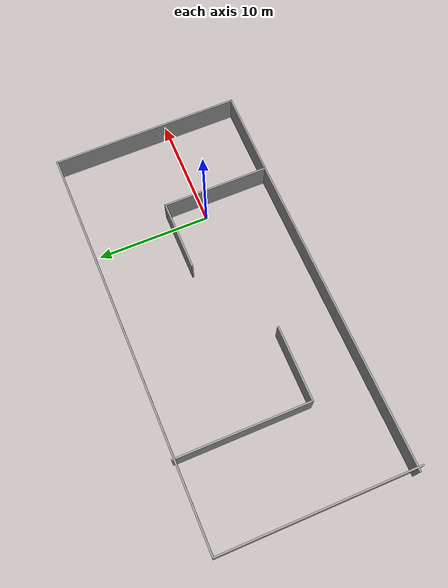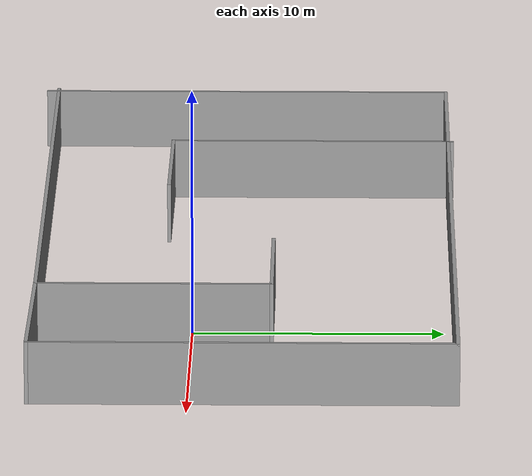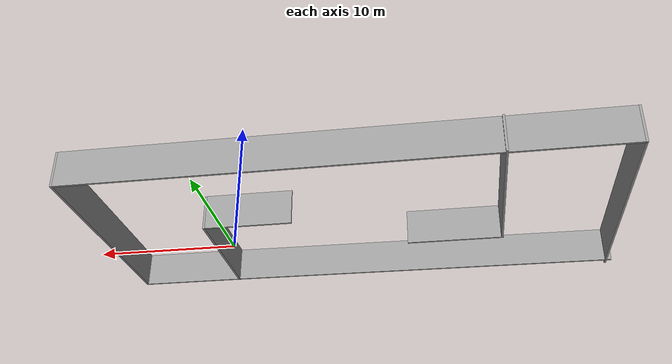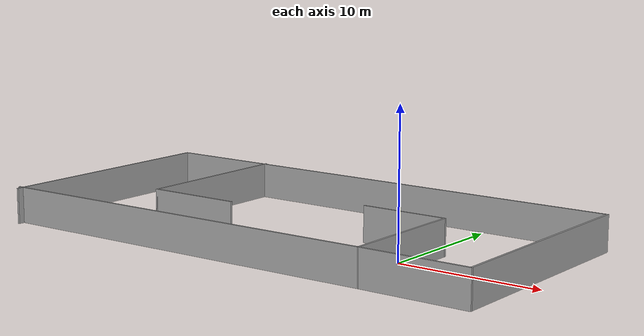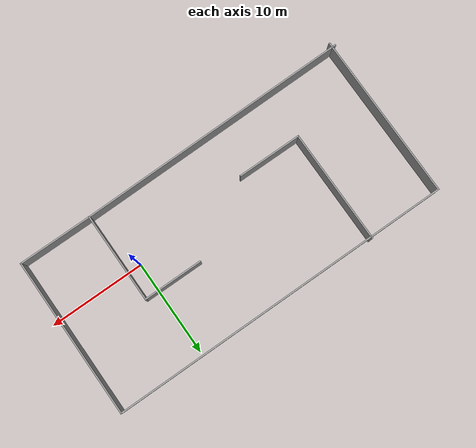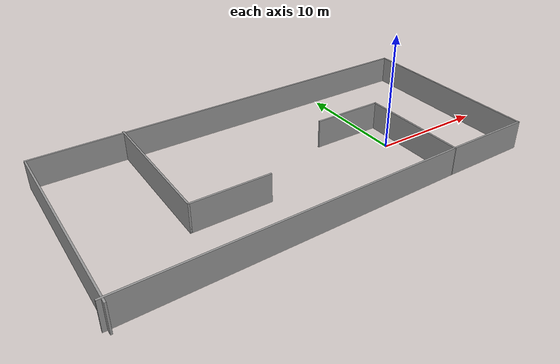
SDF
<?xml version='1.0'?>
<sdf version='1.7'>
  <model name='simple_map.world'>
    <pose>-9.16358 1.82166 0 0 -0 0</pose>
    <link name='Wall_14'>
      <collision name='Wall_14_Collision'>
        <geometry>
          <box>
            <size>17.5 0.15 2.5</size>
          </box>
        </geometry>
        <pose>0 0 1.25 0 -0 0</pose>
      </collision>
      <visual name='Wall_14_Visual'>
        <pose>0 0 1.25 0 -0 0</pose>
        <geometry>
          <box>
            <size>17.5 0.15 2.5</size>
          </box>
        </geometry>
        <material>
          <script>
            <uri>file://media/materials/scripts/gazebo.material</uri>
            <name>Gazebo/Grey</name>
          </script>
          <ambient>1 1 1 1</ambient>
        </material>
        <meta>
          <layer>0</layer>
        </meta>
      </visual>
      <pose>-17.7659 -0.079098 0 0 -0 1.5708</pose>
    </link>
    <link name='Wall_15'>
      <collision name='Wall_15_Collision'>
        <geometry>
          <box>
            <size>36 0.15 2.5</size>
          </box>
        </geometry>
        <pose>0 0 1.25 0 -0 0</pose>
      </collision>
      <visual name='Wall_15_Visual'>
        <pose>0 0 1.25 0 -0 0</pose>
        <geometry>
          <box>
            <size>36 0.15 2.5</size>
          </box>
        </geometry>
        <material>
          <script>
            <uri>file://media/materials/scripts/gazebo.material</uri>
            <name>Gazebo/Grey</name>
          </script>
          <ambient>1 1 1 1</ambient>
        </material>
        <meta>
          <layer>0</layer>
        </meta>
      </visual>
      <pose>0.159126 8.5959 0 0 -0 0</pose>
    </link>
    <link name='Wall_16'>
      <collision name='Wall_16_Collision'>
        <geometry>
          <box>
            <size>16.75 0.15 2.5</size>
          </box>
        </geometry>
        <pose>0 0 1.25 0 -0 0</pose>
      </collision>
      <visual name='Wall_16_Visual'>
        <pose>0 0 1.25 0 -0 0</pose>
        <geometry>
          <box>
            <size>16.75 0.15 2.5</size>
          </box>
        </geometry>
        <material>
          <script>
            <uri>file://media/materials/scripts/gazebo.material</uri>
            <name>Gazebo/Grey</name>
          </script>
          <ambient>1 1 1 1</ambient>
        </material>
        <meta>
          <layer>0</layer>
        </meta>
      </visual>
      <pose>18.0841 0.295902 0 0 -0 -1.5708</pose>
    </link>
    <link name='Wall_17'>
      <collision name='Wall_17_Collision'>
        <geometry>
          <box>
            <size>7.75 0.15 2.5</size>
          </box>
        </geometry>
        <pose>0 0 1.25 0 -0 0</pose>
      </collision>
      <visual name='Wall_17_Visual'>
        <pose>0 0 1.25 0 -0 0</pose>
        <geometry>
          <box>
            <size>7.75 0.15 2.5</size>
          </box>
        </geometry>
        <material>
          <script>
            <uri>file://media/materials/scripts/gazebo.material</uri>
            <name>Gazebo/Grey</name>
          </script>
          <ambient>1 1 1 1</ambient>
        </material>
        <meta>
          <layer>0</layer>
        </meta>
      </visual>
      <pose>14.2841 -8.0041 0 0 -0 3.14159</pose>
    </link>
    <link name='Wall_18'>
      <collision name='Wall_18_Collision'>
        <geometry>
          <box>
            <size>9.5 0.15 2.5</size>
          </box>
        </geometry>
        <pose>0 0 1.25 0 -0 0</pose>
      </collision>
      <visual name='Wall_18_Visual'>
        <pose>0 0 1.25 0 -0 0</pose>
        <geometry>
          <box>
            <size>9.5 0.15 2.5</size>
          </box>
        </geometry>
        <material>
          <script>
            <uri>file://media/materials/scripts/gazebo.material</uri>
            <name>Gazebo/Grey</name>
          </script>
          <ambient>1 1 1 1</ambient>
        </material>
        <meta>
          <layer>0</layer>
        </meta>
      </visual>
      <pose>10.4841 -3.3291 0 0 -0 1.5708</pose>
    </link>
    <link name='Wall_19'>
      <collision name='Wall_19_Collision'>
        <geometry>
          <box>
            <size>6.25 0.15 2.5</size>
          </box>
        </geometry>
        <pose>0 0 1.25 0 -0 0</pose>
      </collision>
      <visual name='Wall_19_Visual'>
        <pose>0 0 1.25 0 -0 0</pose>
        <geometry>
          <box>
            <size>6.25 0.15 2.5</size>
          </box>
        </geometry>
        <material>
          <script>
            <uri>file://media/materials/scripts/gazebo.material</uri>
            <name>Gazebo/Grey</name>
          </script>
          <ambient>1 1 1 1</ambient>
        </material>
        <meta>
          <layer>0</layer>
        </meta>
      </visual>
      <pose>7.43413 1.3459 0 0 -0 3.14159</pose>
    </link>
    <link name='Wall_21'>
      <collision name='Wall_21_Collision'>
        <geometry>
          <box>
            <size>28.7193 0.15 2.5</size>
          </box>
        </geometry>
        <pose>0 0 1.25 0 -0 0</pose>
      </collision>
      <visual name='Wall_21_Visual'>
        <pose>0 0 1.25 0 -0 0</pose>
        <geometry>
          <box>
            <size>28.7193 0.15 2.5</size>
          </box>
        </geometry>
        <material>
          <script>
            <uri>file://media/materials/scripts/gazebo.material</uri>
            <name>Gazebo/Grey</name>
          </script>
          <ambient>1 1 1 1</ambient>
        </material>
        <meta>
          <layer>0</layer>
        </meta>
      </visual>
      <pose>-3.79957 -8.1675 0 0 -0 0.011439</pose>
    </link>
    <link name='Wall_23'>
      <collision name='Wall_23_Collision'>
        <geometry>
          <box>
            <size>12 0.15 2.5</size>
          </box>
        </geometry>
        <pose>0 0 1.25 0 -0 0</pose>
      </collision>
      <visual name='Wall_23_Visual'>
        <pose>0 0 1.25 0 -0 0</pose>
        <geometry>
          <box>
            <size>12 0.15 2.5</size>
          </box>
        </geometry>
        <material>
          <script>
            <uri>file://media/materials/scripts/gazebo.material</uri>
            <name>Gazebo/Grey</name>
          </script>
          <ambient>1 1 1 1</ambient>
        </material>
        <meta>
          <layer>0</layer>
        </meta>
      </visual>
      <pose>-9.97791 2.8291 0 0 -0 -1.5708</pose>
    </link>
    <link name='Wall_24'>
      <collision name='Wall_24_Collision'>
        <geometry>
          <box>
            <size>6.75 0.15 2.5</size>
          </box>
        </geometry>
        <pose>0 0 1.25 0 -0 0</pose>
      </collision>
      <visual name='Wall_24_Visual'>
        <pose>0 0 1.25 0 -0 0</pose>
        <geometry>
          <box>
            <size>6.75 0.15 2.5</size>
          </box>
        </geometry>
        <material>
          <script>
            <uri>file://media/materials/scripts/gazebo.material</uri>
            <name>Gazebo/Grey</name>
          </script>
          <ambient>1 1 1 1</ambient>
        </material>
        <meta>
          <layer>0</layer>
        </meta>
      </visual>
      <pose>-6.67791 -3.0959 0 0 -0 0</pose>
    </link>
    <static>1</static>
  </model>
</sdf>
